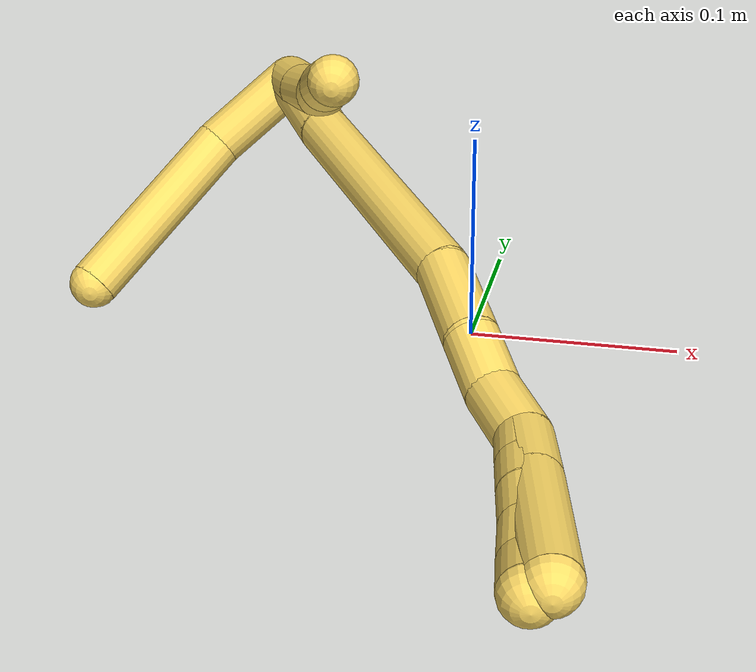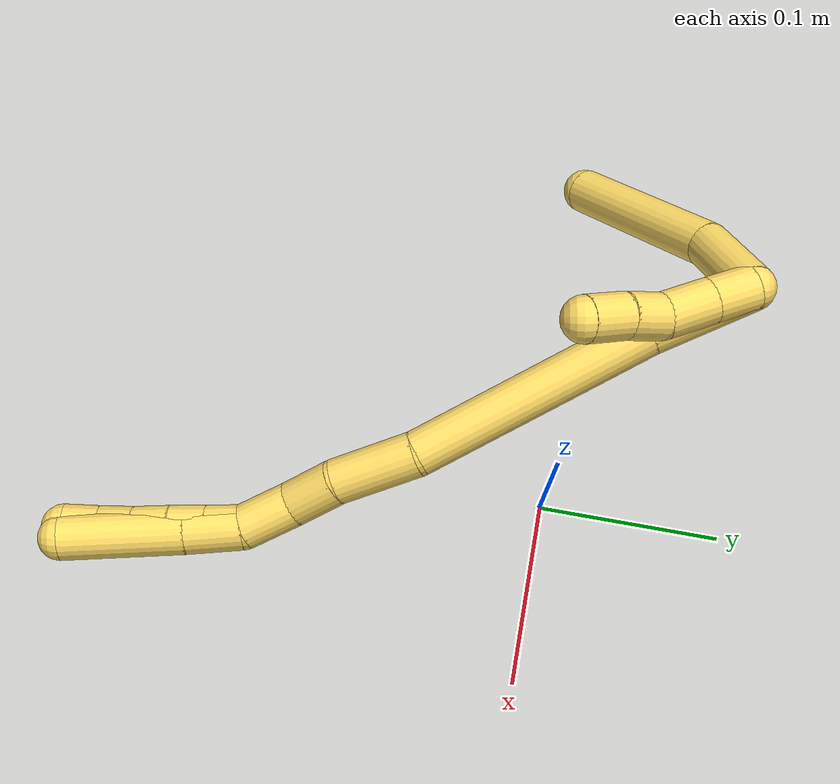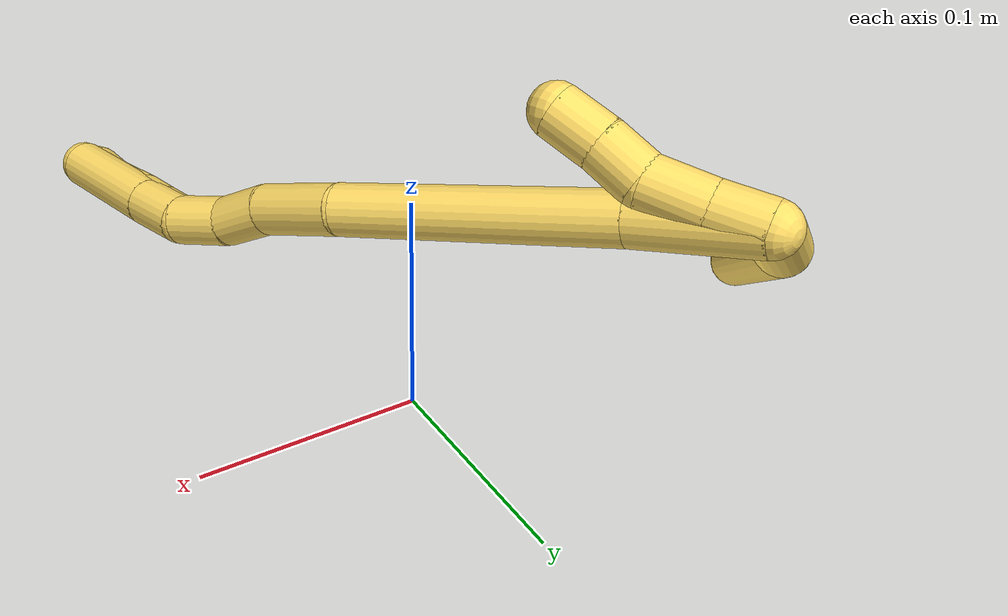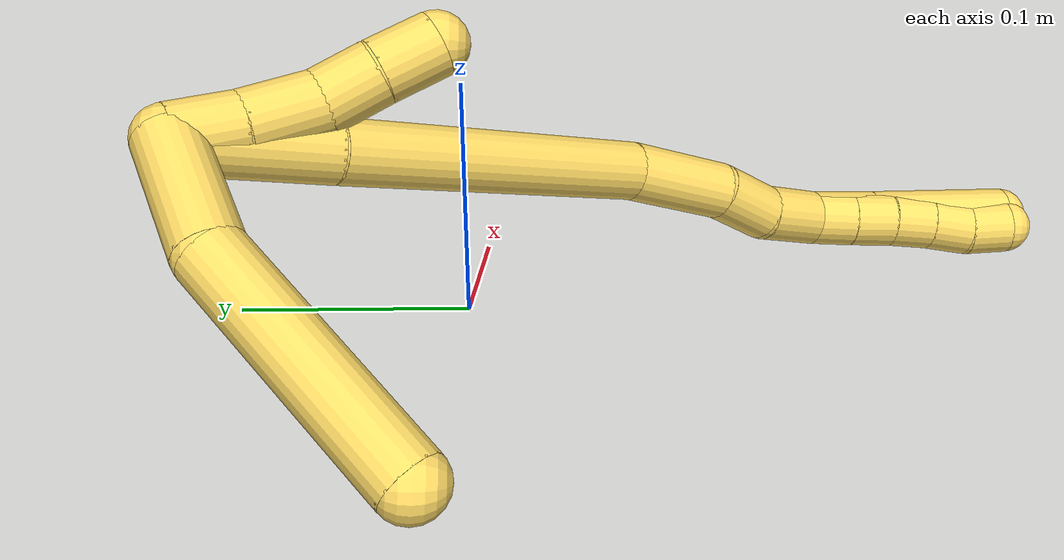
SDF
<sdf version="1.7">
 <world name="default">
  <model name="5">
   <static>0</static>
   <link name="5">
    <collision name="collision-cylinder-e_1_2_8">
     <pose>-0.023462 0.000697 0.009108 -0.076322 -1.19952 0.052201</pose>
     <geometry><cylinder><radius>0.0125</radius><length>0.050355</length></cylinder></geometry>
     <surface>
      <friction><ode><mu>1.16</mu><mu2>1.16</mu2><slip1>0</slip1><slip2>0</slip2></ode></friction>
      <contact><ode><kp>1e+06</kp><kd>1</kd><max_vel>0</max_vel><min_depth>0.001</min_depth></ode></contact>
     </surface>
    </collision>
    <visual name="visual-cylinder-e_1_2_8">
     <pose>-0.023462 0.000697 0.009108 -0.076322 -1.19952 0.052201</pose>
     <geometry><cylinder><radius>0.0125</radius><length>0.050355</length></cylinder></geometry>
     <material><ambient>1 0.858824 0.4 1</ambient></material>
    </visual>
    <collision name="collision-cylinder-e_2_8_6">
     <pose>-0.085384 5.7e-05 0.04986 0.042183 -0.881879 -0.01991</pose>
     <geometry><cylinder><radius>0.0125</radius><length>0.099645</length></cylinder></geometry>
     <surface>
      <friction><ode><mu>1.16</mu><mu2>1.16</mu2><slip1>0</slip1><slip2>0</slip2></ode></friction>
      <contact><ode><kp>1e+06</kp><kd>1</kd><max_vel>0</max_vel><min_depth>0.001</min_depth></ode></contact>
     </surface>
    </collision>
    <visual name="visual-cylinder-e_2_8_6">
     <pose>-0.085384 5.7e-05 0.04986 0.042183 -0.881879 -0.01991</pose>
     <geometry><cylinder><radius>0.0125</radius><length>0.099645</length></cylinder></geometry>
     <material><ambient>1 0.858824 0.4 1</ambient></material>
    </visual>
    <collision name="collision-cylinder-e_1_2_9">
     <pose>0.004654 -0.001083 0.011298 0.095601 0.38914 0.018853</pose>
     <geometry><cylinder><radius>0.0125</radius><length>0.024535</length></cylinder></geometry>
     <surface>
      <friction><ode><mu>1.16</mu><mu2>1.16</mu2><slip1>0</slip1><slip2>0</slip2></ode></friction>
      <contact><ode><kp>1e+06</kp><kd>1</kd><max_vel>0</max_vel><min_depth>0.001</min_depth></ode></contact>
     </surface>
    </collision>
    <visual name="visual-cylinder-e_1_2_9">
     <pose>0.004654 -0.001083 0.011298 0.095601 0.38914 0.018853</pose>
     <geometry><cylinder><radius>0.0125</radius><length>0.024535</length></cylinder></geometry>
     <material><ambient>1 0.858824 0.4 1</ambient></material>
    </visual>
    <collision name="collision-cylinder-e_2_9_10">
     <pose>0.015905 -0.002817 0.035376 0.050868 0.475981 0.012342</pose>
     <geometry><cylinder><radius>0.0125</radius><length>0.028791</length></cylinder></geometry>
     <surface>
      <friction><ode><mu>1.16</mu><mu2>1.16</mu2><slip1>0</slip1><slip2>0</slip2></ode></friction>
      <contact><ode><kp>1e+06</kp><kd>1</kd><max_vel>0</max_vel><min_depth>0.001</min_depth></ode></contact>
     </surface>
    </collision>
    <visual name="visual-cylinder-e_2_9_10">
     <pose>0.015905 -0.002817 0.035376 0.050868 0.475981 0.012342</pose>
     <geometry><cylinder><radius>0.0125</radius><length>0.028791</length></cylinder></geometry>
     <material><ambient>1 0.858824 0.4 1</ambient></material>
    </visual>
    <collision name="collision-cylinder-e_3_10_11">
     <pose>0.02755 -0.000166 0.057824 -0.329039 0.459012 -0.077533</pose>
     <geometry><cylinder><radius>0.0125</radius><length>0.022794</length></cylinder></geometry>
     <surface>
      <friction><ode><mu>1.16</mu><mu2>1.16</mu2><slip1>0</slip1><slip2>0</slip2></ode></friction>
      <contact><ode><kp>1e+06</kp><kd>1</kd><max_vel>0</max_vel><min_depth>0.001</min_depth></ode></contact>
     </surface>
    </collision>
    <visual name="visual-cylinder-e_3_10_11">
     <pose>0.02755 -0.000166 0.057824 -0.329039 0.459012 -0.077533</pose>
     <geometry><cylinder><radius>0.0125</radius><length>0.022794</length></cylinder></geometry>
     <material><ambient>1 0.858824 0.4 1</ambient></material>
    </visual>
    <collision name="collision-cylinder-e_4_11_5">
     <pose>0.038207 0.005549 0.077754 -0.231005 0.488867 -0.057859</pose>
     <geometry><cylinder><radius>0.0125</radius><length>0.02388</length></cylinder></geometry>
     <surface>
      <friction><ode><mu>1.16</mu><mu2>1.16</mu2><slip1>0</slip1><slip2>0</slip2></ode></friction>
      <contact><ode><kp>1e+06</kp><kd>1</kd><max_vel>0</max_vel><min_depth>0.001</min_depth></ode></contact>
     </surface>
    </collision>
    <visual name="visual-cylinder-e_4_11_5">
     <pose>0.038207 0.005549 0.077754 -0.231005 0.488867 -0.057859</pose>
     <geometry><cylinder><radius>0.0125</radius><length>0.02388</length></cylinder></geometry>
     <material><ambient>1 0.858824 0.4 1</ambient></material>
    </visual>
    <collision name="collision-cylinder-e_1_2_12">
     <pose>0.0065 -0.009202 0.026765 0.331148 0.225758 0.037882</pose>
     <geometry><cylinder><radius>0.0125</radius><length>0.058079</length></cylinder></geometry>
     <surface>
      <friction><ode><mu>1.16</mu><mu2>1.16</mu2><slip1>0</slip1><slip2>0</slip2></ode></friction>
      <contact><ode><kp>1e+06</kp><kd>1</kd><max_vel>0</max_vel><min_depth>0.001</min_depth></ode></contact>
     </surface>
    </collision>
    <visual name="visual-cylinder-e_1_2_12">
     <pose>0.0065 -0.009202 0.026765 0.331148 0.225758 0.037882</pose>
     <geometry><cylinder><radius>0.0125</radius><length>0.058079</length></cylinder></geometry>
     <material><ambient>1 0.858824 0.4 1</ambient></material>
    </visual>
    <collision name="collision-cylinder-e_2_12_13">
     <pose>0.03178 -0.043378 0.114122 0.390948 0.279071 0.055604</pose>
     <geometry><cylinder><radius>0.0125</radius><length>0.136351</length></cylinder></geometry>
     <surface>
      <friction><ode><mu>1.16</mu><mu2>1.16</mu2><slip1>0</slip1><slip2>0</slip2></ode></friction>
      <contact><ode><kp>1e+06</kp><kd>1</kd><max_vel>0</max_vel><min_depth>0.001</min_depth></ode></contact>
     </surface>
    </collision>
    <visual name="visual-cylinder-e_2_12_13">
     <pose>0.03178 -0.043378 0.114122 0.390948 0.279071 0.055604</pose>
     <geometry><cylinder><radius>0.0125</radius><length>0.136351</length></cylinder></geometry>
     <material><ambient>1 0.858824 0.4 1</ambient></material>
    </visual>
    <collision name="collision-cylinder-e_3_13_14">
     <pose>0.052291 -0.076104 0.196516 0.341609 0.074683 0.012887</pose>
     <geometry><cylinder><radius>0.0125</radius><length>0.046406</length></cylinder></geometry>
     <surface>
      <friction><ode><mu>1.16</mu><mu2>1.16</mu2><slip1>0</slip1><slip2>0</slip2></ode></friction>
      <contact><ode><kp>1e+06</kp><kd>1</kd><max_vel>0</max_vel><min_depth>0.001</min_depth></ode></contact>
     </surface>
    </collision>
    <visual name="visual-cylinder-e_3_13_14">
     <pose>0.052291 -0.076104 0.196516 0.341609 0.074683 0.012887</pose>
     <geometry><cylinder><radius>0.0125</radius><length>0.046406</length></cylinder></geometry>
     <material><ambient>1 0.858824 0.4 1</ambient></material>
    </visual>
    <collision name="collision-cylinder-e_4_14_15">
     <pose>0.054007 -0.091185 0.230649 0.536302 -0.001091 -0.0003</pose>
     <geometry><cylinder><radius>0.0125</radius><length>0.028691</length></cylinder></geometry>
     <surface>
      <friction><ode><mu>1.16</mu><mu2>1.16</mu2><slip1>0</slip1><slip2>0</slip2></ode></friction>
      <contact><ode><kp>1e+06</kp><kd>1</kd><max_vel>0</max_vel><min_depth>0.001</min_depth></ode></contact>
     </surface>
    </collision>
    <visual name="visual-cylinder-e_4_14_15">
     <pose>0.054007 -0.091185 0.230649 0.536302 -0.001091 -0.0003</pose>
     <geometry><cylinder><radius>0.0125</radius><length>0.028691</length></cylinder></geometry>
     <material><ambient>1 0.858824 0.4 1</ambient></material>
    </visual>
    <collision name="collision-cylinder-e_5_15_1">
     <pose>0.057237 -0.104052 0.2568 0.381059 0.21467 0.041557</pose>
     <geometry><cylinder><radius>0.0125</radius><length>0.030473</length></cylinder></geometry>
     <surface>
      <friction><ode><mu>1.16</mu><mu2>1.16</mu2><slip1>0</slip1><slip2>0</slip2></ode></friction>
      <contact><ode><kp>1e+06</kp><kd>1</kd><max_vel>0</max_vel><min_depth>0.001</min_depth></ode></contact>
     </surface>
    </collision>
    <visual name="visual-cylinder-e_5_15_1">
     <pose>0.057237 -0.104052 0.2568 0.381059 0.21467 0.041557</pose>
     <geometry><cylinder><radius>0.0125</radius><length>0.030473</length></cylinder></geometry>
     <material><ambient>1 0.858824 0.4 1</ambient></material>
    </visual>
    <collision name="collision-cylinder-e_1_1_16">
     <pose>0.061695 -0.110118 0.286251 0.033862 0.077351 0.00131</pose>
     <geometry><cylinder><radius>0.0125</radius><length>0.031375</length></cylinder></geometry>
     <surface>
      <friction><ode><mu>1.16</mu><mu2>1.16</mu2><slip1>0</slip1><slip2>0</slip2></ode></friction>
      <contact><ode><kp>1e+06</kp><kd>1</kd><max_vel>0</max_vel><min_depth>0.001</min_depth></ode></contact>
     </surface>
    </collision>
    <visual name="visual-cylinder-e_1_1_16">
     <pose>0.061695 -0.110118 0.286251 0.033862 0.077351 0.00131</pose>
     <geometry><cylinder><radius>0.0125</radius><length>0.031375</length></cylinder></geometry>
     <material><ambient>1 0.858824 0.4 1</ambient></material>
    </visual>
    <collision name="collision-cylinder-e_2_16_4">
     <pose>0.065525 -0.110626 0.336095 -0.000631 0.076373 -2.4e-05</pose>
     <geometry><cylinder><radius>0.0125</radius><length>0.068625</length></cylinder></geometry>
     <surface>
      <friction><ode><mu>1.16</mu><mu2>1.16</mu2><slip1>0</slip1><slip2>0</slip2></ode></friction>
      <contact><ode><kp>1e+06</kp><kd>1</kd><max_vel>0</max_vel><min_depth>0.001</min_depth></ode></contact>
     </surface>
    </collision>
    <visual name="visual-cylinder-e_2_16_4">
     <pose>0.065525 -0.110626 0.336095 -0.000631 0.076373 -2.4e-05</pose>
     <geometry><cylinder><radius>0.0125</radius><length>0.068625</length></cylinder></geometry>
     <material><ambient>1 0.858824 0.4 1</ambient></material>
    </visual>
    <collision name="collision-cylinder-e_1_1_17">
     <pose>0.060508 -0.109672 0.280619 0.008427 0.002471 1e-05</pose>
     <geometry><cylinder><radius>0.0125</radius><length>0.02</length></cylinder></geometry>
     <surface>
      <friction><ode><mu>1.16</mu><mu2>1.16</mu2><slip1>0</slip1><slip2>0</slip2></ode></friction>
      <contact><ode><kp>1e+06</kp><kd>1</kd><max_vel>0</max_vel><min_depth>0.001</min_depth></ode></contact>
     </surface>
    </collision>
    <visual name="visual-cylinder-e_1_1_17">
     <pose>0.060508 -0.109672 0.280619 0.008427 0.002471 1e-05</pose>
     <geometry><cylinder><radius>0.0125</radius><length>0.02</length></cylinder></geometry>
     <material><ambient>1 0.858824 0.4 1</ambient></material>
    </visual>
    <collision name="collision-cylinder-e_2_17_18">
     <pose>0.060738 -0.109666 0.300616 -0.009106 0.020609 -9.4e-05</pose>
     <geometry><cylinder><radius>0.0125</radius><length>0.02</length></cylinder></geometry>
     <surface>
      <friction><ode><mu>1.16</mu><mu2>1.16</mu2><slip1>0</slip1><slip2>0</slip2></ode></friction>
      <contact><ode><kp>1e+06</kp><kd>1</kd><max_vel>0</max_vel><min_depth>0.001</min_depth></ode></contact>
     </surface>
    </collision>
    <visual name="visual-cylinder-e_2_17_18">
     <pose>0.060738 -0.109666 0.300616 -0.009106 0.020609 -9.4e-05</pose>
     <geometry><cylinder><radius>0.0125</radius><length>0.02</length></cylinder></geometry>
     <material><ambient>1 0.858824 0.4 1</ambient></material>
    </visual>
    <collision name="collision-cylinder-e_3_18_19">
     <pose>0.060831 -0.110006 0.320603 0.043133 -0.011352 -0.000245</pose>
     <geometry><cylinder><radius>0.0125</radius><length>0.02</length></cylinder></geometry>
     <surface>
      <friction><ode><mu>1.16</mu><mu2>1.16</mu2><slip1>0</slip1><slip2>0</slip2></ode></friction>
      <contact><ode><kp>1e+06</kp><kd>1</kd><max_vel>0</max_vel><min_depth>0.001</min_depth></ode></contact>
     </surface>
    </collision>
    <visual name="visual-cylinder-e_3_18_19">
     <pose>0.060831 -0.110006 0.320603 0.043133 -0.011352 -0.000245</pose>
     <geometry><cylinder><radius>0.0125</radius><length>0.02</length></cylinder></geometry>
     <material><ambient>1 0.858824 0.4 1</ambient></material>
    </visual>
    <collision name="collision-cylinder-e_4_19_20">
     <pose>0.059755 -0.110892 0.340537 0.045744 -0.09642 -0.002207</pose>
     <geometry><cylinder><radius>0.0125</radius><length>0.02</length></cylinder></geometry>
     <surface>
      <friction><ode><mu>1.16</mu><mu2>1.16</mu2><slip1>0</slip1><slip2>0</slip2></ode></friction>
      <contact><ode><kp>1e+06</kp><kd>1</kd><max_vel>0</max_vel><min_depth>0.001</min_depth></ode></contact>
     </surface>
    </collision>
    <visual name="visual-cylinder-e_4_19_20">
     <pose>0.059755 -0.110892 0.340537 0.045744 -0.09642 -0.002207</pose>
     <geometry><cylinder><radius>0.0125</radius><length>0.02</length></cylinder></geometry>
     <material><ambient>1 0.858824 0.4 1</ambient></material>
    </visual>
    <collision name="collision-cylinder-e_5_20_3">
     <pose>0.059231 -0.110381 0.360423 -0.096854 0.043937 -0.00213</pose>
     <geometry><cylinder><radius>0.0125</radius><length>0.02</length></cylinder></geometry>
     <surface>
      <friction><ode><mu>1.16</mu><mu2>1.16</mu2><slip1>0</slip1><slip2>0</slip2></ode></friction>
      <contact><ode><kp>1e+06</kp><kd>1</kd><max_vel>0</max_vel><min_depth>0.001</min_depth></ode></contact>
     </surface>
    </collision>
    <visual name="visual-cylinder-e_5_20_3">
     <pose>0.059231 -0.110381 0.360423 -0.096854 0.043937 -0.00213</pose>
     <geometry><cylinder><radius>0.0125</radius><length>0.02</length></cylinder></geometry>
     <material><ambient>1 0.858824 0.4 1</ambient></material>
    </visual>
    <collision name="collision-sphere-3">
     <pose>0.05967 -0.109415 0.370367 0 -0 0</pose>
     <geometry><sphere><radius>0.0125</radius></sphere></geometry>
     <surface>
      <friction><ode><mu>1.16</mu><mu2>1.16</mu2><slip1>0</slip1><slip2>0</slip2></ode></friction>
      <contact><ode><kp>1e+06</kp><kd>1</kd><max_vel>0</max_vel><min_depth>0.001</min_depth></ode></contact>
     </surface>
    </collision>
    <visual name="visual-sphere-3">
     <pose>0.05967 -0.109415 0.370367 0 -0 0</pose>
     <geometry><sphere><radius>0.0125</radius></sphere></geometry>
     <material><ambient>1 0.858824 0.4 1</ambient></material>
    </visual>
    <collision name="collision-sphere-20">
     <pose>0.058792 -0.111347 0.35048 0 -0 0</pose>
     <geometry><sphere><radius>0.0125</radius></sphere></geometry>
     <surface>
      <friction><ode><mu>1.16</mu><mu2>1.16</mu2><slip1>0</slip1><slip2>0</slip2></ode></friction>
      <contact><ode><kp>1e+06</kp><kd>1</kd><max_vel>0</max_vel><min_depth>0.001</min_depth></ode></contact>
     </surface>
    </collision>
    <visual name="visual-sphere-20">
     <pose>0.058792 -0.111347 0.35048 0 -0 0</pose>
     <geometry><sphere><radius>0.0125</radius></sphere></geometry>
     <material><ambient>1 0.858824 0.4 1</ambient></material>
    </visual>
    <collision name="collision-sphere-19">
     <pose>0.060717 -0.110437 0.330593 0 -0 0</pose>
     <geometry><sphere><radius>0.0125</radius></sphere></geometry>
     <surface>
      <friction><ode><mu>1.16</mu><mu2>1.16</mu2><slip1>0</slip1><slip2>0</slip2></ode></friction>
      <contact><ode><kp>1e+06</kp><kd>1</kd><max_vel>0</max_vel><min_depth>0.001</min_depth></ode></contact>
     </surface>
    </collision>
    <visual name="visual-sphere-19">
     <pose>0.060717 -0.110437 0.330593 0 -0 0</pose>
     <geometry><sphere><radius>0.0125</radius></sphere></geometry>
     <material><ambient>1 0.858824 0.4 1</ambient></material>
    </visual>
    <collision name="collision-sphere-11">
     <pose>0.0326 0.003135 0.067493 0 -0 0</pose>
     <geometry><sphere><radius>0.0125</radius></sphere></geometry>
     <surface>
      <friction><ode><mu>1.16</mu><mu2>1.16</mu2><slip1>0</slip1><slip2>0</slip2></ode></friction>
      <contact><ode><kp>1e+06</kp><kd>1</kd><max_vel>0</max_vel><min_depth>0.001</min_depth></ode></contact>
     </surface>
    </collision>
    <visual name="visual-sphere-11">
     <pose>0.0326 0.003135 0.067493 0 -0 0</pose>
     <geometry><sphere><radius>0.0125</radius></sphere></geometry>
     <material><ambient>1 0.858824 0.4 1</ambient></material>
    </visual>
    <collision name="collision-sphere-10">
     <pose>0.022501 -0.003468 0.048154 0 -0 0</pose>
     <geometry><sphere><radius>0.0125</radius></sphere></geometry>
     <surface>
      <friction><ode><mu>1.16</mu><mu2>1.16</mu2><slip1>0</slip1><slip2>0</slip2></ode></friction>
      <contact><ode><kp>1e+06</kp><kd>1</kd><max_vel>0</max_vel><min_depth>0.001</min_depth></ode></contact>
     </surface>
    </collision>
    <visual name="visual-sphere-10">
     <pose>0.022501 -0.003468 0.048154 0 -0 0</pose>
     <geometry><sphere><radius>0.0125</radius></sphere></geometry>
     <material><ambient>1 0.858824 0.4 1</ambient></material>
    </visual>
    <collision name="collision-sphere-6">
     <pose>-0.123843 -0.001278 0.081504 0 -0 0</pose>
     <geometry><sphere><radius>0.0125</radius></sphere></geometry>
     <surface>
      <friction><ode><mu>1.16</mu><mu2>1.16</mu2><slip1>0</slip1><slip2>0</slip2></ode></friction>
      <contact><ode><kp>1e+06</kp><kd>1</kd><max_vel>0</max_vel><min_depth>0.001</min_depth></ode></contact>
     </surface>
    </collision>
    <visual name="visual-sphere-6">
     <pose>-0.123843 -0.001278 0.081504 0 -0 0</pose>
     <geometry><sphere><radius>0.0125</radius></sphere></geometry>
     <material><ambient>1 0.858824 0.4 1</ambient></material>
    </visual>
    <collision name="collision-sphere-9">
     <pose>0.009308 -0.002167 0.022597 0 -0 0</pose>
     <geometry><sphere><radius>0.0125</radius></sphere></geometry>
     <surface>
      <friction><ode><mu>1.16</mu><mu2>1.16</mu2><slip1>0</slip1><slip2>0</slip2></ode></friction>
      <contact><ode><kp>1e+06</kp><kd>1</kd><max_vel>0</max_vel><min_depth>0.001</min_depth></ode></contact>
     </surface>
    </collision>
    <visual name="visual-sphere-9">
     <pose>0.009308 -0.002167 0.022597 0 -0 0</pose>
     <geometry><sphere><radius>0.0125</radius></sphere></geometry>
     <material><ambient>1 0.858824 0.4 1</ambient></material>
    </visual>
    <collision name="collision-sphere-2">
     <geometry><sphere><radius>0.0125</radius></sphere></geometry>
     <surface>
      <friction><ode><mu>1.16</mu><mu2>1.16</mu2><slip1>0</slip1><slip2>0</slip2></ode></friction>
      <contact><ode><kp>1e+06</kp><kd>1</kd><max_vel>0</max_vel><min_depth>0.001</min_depth></ode></contact>
     </surface>
    </collision>
    <visual name="visual-sphere-2">
     <geometry><sphere><radius>0.0125</radius></sphere></geometry>
     <material><ambient>1 0.858824 0.4 1</ambient></material>
    </visual>
    <collision name="collision-sphere-8">
     <pose>-0.046924 0.001393 0.018216 0 -0 0</pose>
     <geometry><sphere><radius>0.0125</radius></sphere></geometry>
     <surface>
      <friction><ode><mu>1.16</mu><mu2>1.16</mu2><slip1>0</slip1><slip2>0</slip2></ode></friction>
      <contact><ode><kp>1e+06</kp><kd>1</kd><max_vel>0</max_vel><min_depth>0.001</min_depth></ode></contact>
     </surface>
    </collision>
    <visual name="visual-sphere-8">
     <pose>-0.046924 0.001393 0.018216 0 -0 0</pose>
     <geometry><sphere><radius>0.0125</radius></sphere></geometry>
     <material><ambient>1 0.858824 0.4 1</ambient></material>
    </visual>
    <collision name="collision-sphere-5">
     <pose>0.043815 0.007962 0.088016 0 -0 0</pose>
     <geometry><sphere><radius>0.0125</radius></sphere></geometry>
     <surface>
      <friction><ode><mu>1.16</mu><mu2>1.16</mu2><slip1>0</slip1><slip2>0</slip2></ode></friction>
      <contact><ode><kp>1e+06</kp><kd>1</kd><max_vel>0</max_vel><min_depth>0.001</min_depth></ode></contact>
     </surface>
    </collision>
    <visual name="visual-sphere-5">
     <pose>0.043815 0.007962 0.088016 0 -0 0</pose>
     <geometry><sphere><radius>0.0125</radius></sphere></geometry>
     <material><ambient>1 0.858824 0.4 1</ambient></material>
    </visual>
    <collision name="collision-sphere-12">
     <pose>0.013001 -0.018404 0.05353 0 -0 0</pose>
     <geometry><sphere><radius>0.0125</radius></sphere></geometry>
     <surface>
      <friction><ode><mu>1.16</mu><mu2>1.16</mu2><slip1>0</slip1><slip2>0</slip2></ode></friction>
      <contact><ode><kp>1e+06</kp><kd>1</kd><max_vel>0</max_vel><min_depth>0.001</min_depth></ode></contact>
     </surface>
    </collision>
    <visual name="visual-sphere-12">
     <pose>0.013001 -0.018404 0.05353 0 -0 0</pose>
     <geometry><sphere><radius>0.0125</radius></sphere></geometry>
     <material><ambient>1 0.858824 0.4 1</ambient></material>
    </visual>
    <collision name="collision-sphere-13">
     <pose>0.05056 -0.068352 0.174715 0 -0 0</pose>
     <geometry><sphere><radius>0.0125</radius></sphere></geometry>
     <surface>
      <friction><ode><mu>1.16</mu><mu2>1.16</mu2><slip1>0</slip1><slip2>0</slip2></ode></friction>
      <contact><ode><kp>1e+06</kp><kd>1</kd><max_vel>0</max_vel><min_depth>0.001</min_depth></ode></contact>
     </surface>
    </collision>
    <visual name="visual-sphere-13">
     <pose>0.05056 -0.068352 0.174715 0 -0 0</pose>
     <geometry><sphere><radius>0.0125</radius></sphere></geometry>
     <material><ambient>1 0.858824 0.4 1</ambient></material>
    </visual>
    <collision name="collision-sphere-14">
     <pose>0.054023 -0.083855 0.218318 0 -0 0</pose>
     <geometry><sphere><radius>0.0125</radius></sphere></geometry>
     <surface>
      <friction><ode><mu>1.16</mu><mu2>1.16</mu2><slip1>0</slip1><slip2>0</slip2></ode></friction>
      <contact><ode><kp>1e+06</kp><kd>1</kd><max_vel>0</max_vel><min_depth>0.001</min_depth></ode></contact>
     </surface>
    </collision>
    <visual name="visual-sphere-14">
     <pose>0.054023 -0.083855 0.218318 0 -0 0</pose>
     <geometry><sphere><radius>0.0125</radius></sphere></geometry>
     <material><ambient>1 0.858824 0.4 1</ambient></material>
    </visual>
    <collision name="collision-sphere-15">
     <pose>0.053991 -0.098515 0.242981 0 -0 0</pose>
     <geometry><sphere><radius>0.0125</radius></sphere></geometry>
     <surface>
      <friction><ode><mu>1.16</mu><mu2>1.16</mu2><slip1>0</slip1><slip2>0</slip2></ode></friction>
      <contact><ode><kp>1e+06</kp><kd>1</kd><max_vel>0</max_vel><min_depth>0.001</min_depth></ode></contact>
     </surface>
    </collision>
    <visual name="visual-sphere-15">
     <pose>0.053991 -0.098515 0.242981 0 -0 0</pose>
     <geometry><sphere><radius>0.0125</radius></sphere></geometry>
     <material><ambient>1 0.858824 0.4 1</ambient></material>
    </visual>
    <collision name="collision-sphere-1">
     <pose>0.060483 -0.109588 0.270619 0 -0 0</pose>
     <geometry><sphere><radius>0.0125</radius></sphere></geometry>
     <surface>
      <friction><ode><mu>1.16</mu><mu2>1.16</mu2><slip1>0</slip1><slip2>0</slip2></ode></friction>
      <contact><ode><kp>1e+06</kp><kd>1</kd><max_vel>0</max_vel><min_depth>0.001</min_depth></ode></contact>
     </surface>
    </collision>
    <visual name="visual-sphere-1">
     <pose>0.060483 -0.109588 0.270619 0 -0 0</pose>
     <geometry><sphere><radius>0.0125</radius></sphere></geometry>
     <material><ambient>1 0.858824 0.4 1</ambient></material>
    </visual>
    <collision name="collision-sphere-18">
     <pose>0.060944 -0.109575 0.310613 0 -0 0</pose>
     <geometry><sphere><radius>0.0125</radius></sphere></geometry>
     <surface>
      <friction><ode><mu>1.16</mu><mu2>1.16</mu2><slip1>0</slip1><slip2>0</slip2></ode></friction>
      <contact><ode><kp>1e+06</kp><kd>1</kd><max_vel>0</max_vel><min_depth>0.001</min_depth></ode></contact>
     </surface>
    </collision>
    <visual name="visual-sphere-18">
     <pose>0.060944 -0.109575 0.310613 0 -0 0</pose>
     <geometry><sphere><radius>0.0125</radius></sphere></geometry>
     <material><ambient>1 0.858824 0.4 1</ambient></material>
    </visual>
    <collision name="collision-sphere-16">
     <pose>0.062907 -0.110647 0.301882 0 -0 0</pose>
     <geometry><sphere><radius>0.0125</radius></sphere></geometry>
     <surface>
      <friction><ode><mu>1.16</mu><mu2>1.16</mu2><slip1>0</slip1><slip2>0</slip2></ode></friction>
      <contact><ode><kp>1e+06</kp><kd>1</kd><max_vel>0</max_vel><min_depth>0.001</min_depth></ode></contact>
     </surface>
    </collision>
    <visual name="visual-sphere-16">
     <pose>0.062907 -0.110647 0.301882 0 -0 0</pose>
     <geometry><sphere><radius>0.0125</radius></sphere></geometry>
     <material><ambient>1 0.858824 0.4 1</ambient></material>
    </visual>
    <collision name="collision-sphere-4">
     <pose>0.068143 -0.110604 0.370307 0 -0 0</pose>
     <geometry><sphere><radius>0.0125</radius></sphere></geometry>
     <surface>
      <friction><ode><mu>1.16</mu><mu2>1.16</mu2><slip1>0</slip1><slip2>0</slip2></ode></friction>
      <contact><ode><kp>1e+06</kp><kd>1</kd><max_vel>0</max_vel><min_depth>0.001</min_depth></ode></contact>
     </surface>
    </collision>
    <visual name="visual-sphere-4">
     <pose>0.068143 -0.110604 0.370307 0 -0 0</pose>
     <geometry><sphere><radius>0.0125</radius></sphere></geometry>
     <material><ambient>1 0.858824 0.4 1</ambient></material>
    </visual>
    <collision name="collision-sphere-17">
     <pose>0.060532 -0.109757 0.290618 0 -0 0</pose>
     <geometry><sphere><radius>0.0125</radius></sphere></geometry>
     <surface>
      <friction><ode><mu>1.16</mu><mu2>1.16</mu2><slip1>0</slip1><slip2>0</slip2></ode></friction>
      <contact><ode><kp>1e+06</kp><kd>1</kd><max_vel>0</max_vel><min_depth>0.001</min_depth></ode></contact>
     </surface>
    </collision>
    <visual name="visual-sphere-17">
     <pose>0.060532 -0.109757 0.290618 0 -0 0</pose>
     <geometry><sphere><radius>0.0125</radius></sphere></geometry>
     <material><ambient>1 0.858824 0.4 1</ambient></material>
    </visual>
    <inertial>
     <pose>0.02041 -0.050353 0.152903 0 -0 0</pose>
     <mass>0.75</mass>
     <inertia>
      <ixx>0.000361</ixx>
      <ixy>0</ixy>
      <ixz>0</ixz>
      <iyy>0.000386</iyy>
      <iyz>0</iyz>
      <izz>0.000149</izz>
     </inertia>
    </inertial>
   </link>
   <pose>-0.111268 0.085224 0.098364 1.68297 -0.684597 0.090365</pose>
  </model>
 </world>
</sdf>
